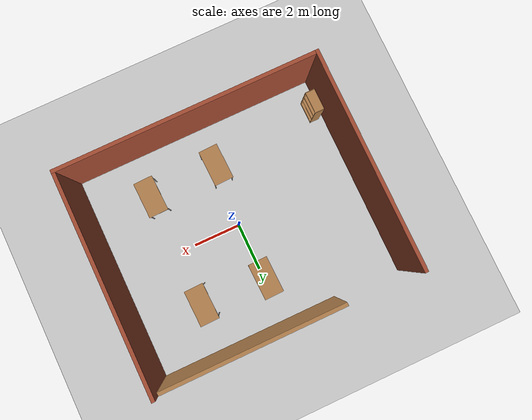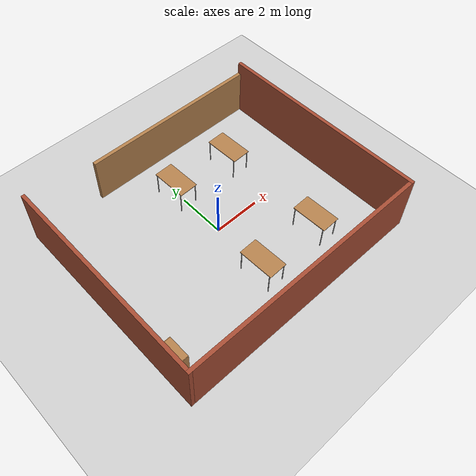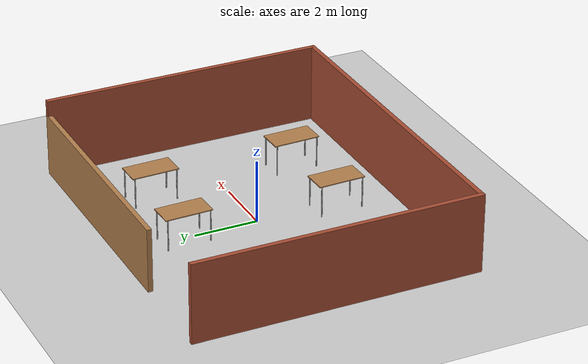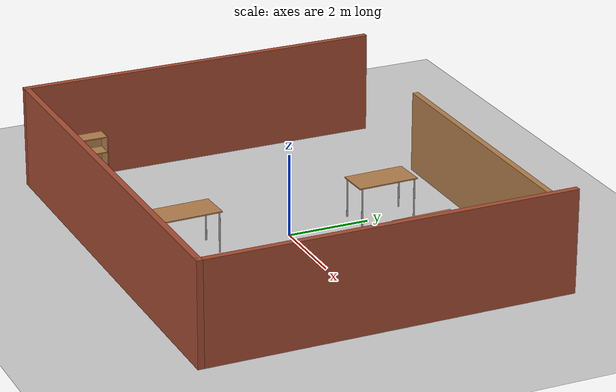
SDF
<sdf version="1.6">
 <world name="default">
  <light name="sun" type="directional">
   <pose>0 0 10 0 -0 0</pose>
   <diffuse>0.8 0.8 0.8 1</diffuse>
   <specular>0.2 0.2 0.2 1</specular>
   <attenuation>
    <range>1000</range>
    <constant>0.9</constant>
    <linear>0.01</linear>
    <quadratic>0.001</quadratic>
   </attenuation>
   <direction>-0.5 0.1 -0.9</direction>
  </light>
  <model name="ground_plane">
   <static>1</static>
   <link name="link">
    <collision name="collision">
     <geometry><plane><normal>0 0 1</normal><size>100 100</size></plane></geometry>
     <surface>
      <contact><collide_bitmask>65535</collide_bitmask></contact>
      <friction><ode><mu>100</mu><mu2>50</mu2></ode></friction>
     </surface>
    </collision>
    <visual name="visual">
     <cast_shadows>0</cast_shadows>
     <geometry><plane><normal>0 0 1</normal><size>100 100</size></plane></geometry>
     <material>
      <script><uri>file://media/materials/scripts/gazebo.material</uri><name>Gazebo/Grey</name></script>
     </material>
    </visual>
   </link>
  </model>
  <gravity>0 0 -9.8</gravity>
  <magnetic_field>6e-06 2.3e-05 -4.2e-05</magnetic_field>
  <atmosphere type="adiabatic"/>
  <physics name="default_physics" default="0" type="ode">
   <max_step_size>0.001</max_step_size>
   <real_time_factor>1</real_time_factor>
   <real_time_update_rate>1000</real_time_update_rate>
  </physics>
  <scene><ambient>0.4 0.4 0.4 1</ambient><background>0.7 0.7 0.7 1</background><shadows>1</shadows></scene>
  <audio><device>default</device></audio>
  <spherical_coordinates>
   <surface_model>EARTH_WGS84</surface_model>
   <latitude_deg>0</latitude_deg>
   <longitude_deg>0</longitude_deg>
   <elevation>0</elevation>
   <heading_deg>0</heading_deg>
  </spherical_coordinates>
  <model name="RRC_club">
   <pose>0.045782 -0.035983 0 0 -0 0</pose>
   <link name="Wall_14">
    <collision name="Wall_14_Collision">
     <geometry><box><size>10.75 0.15 2.5</size></box></geometry>
     <pose>0 0 1.25 0 -0 0</pose>
    </collision>
    <visual name="Wall_14_Visual">
     <pose>0 0 1.25 0 -0 0</pose>
     <geometry><box><size>10.75 0.15 2.5</size></box></geometry>
     <material>
      <script><uri>file://media/materials/scripts/gazebo.material</uri><name>Gazebo/Bricks</name></script>
      <ambient>1 1 1 1</ambient>
     </material>
     <meta><layer>0</layer></meta>
    </visual>
    <pose>-5e-06 -4.42518 0 0 -0 0</pose>
   </link>
   <link name="Wall_16">
    <collision name="Wall_16_Collision">
     <geometry><box><size>9 0.15 2.5</size></box></geometry>
     <pose>0 0 1.25 0 -0 0</pose>
    </collision>
    <visual name="Wall_16_Visual">
     <pose>0 0 1.25 0 -0 0</pose>
     <geometry><box><size>9 0.15 2.5</size></box></geometry>
     <material>
      <script><uri>file://media/materials/scripts/gazebo.material</uri><name>Gazebo/Bricks</name></script>
      <ambient>1 1 1 1</ambient>
     </material>
     <meta><layer>0</layer></meta>
    </visual>
    <pose>5.3 0 0 0 -0 1.57079</pose>
   </link>
   <link name="Wall_18">
    <collision name="Wall_18_Collision">
     <geometry><box><size>9 0.15 2.5</size></box></geometry>
     <pose>0 0 1.25 0 -0 0</pose>
    </collision>
    <visual name="Wall_18_Visual">
     <pose>0 0 1.25 0 -0 0</pose>
     <geometry><box><size>9 0.15 2.5</size></box></geometry>
     <material>
      <script><uri>file://media/materials/scripts/gazebo.material</uri><name>Gazebo/Bricks</name></script>
      <ambient>1 1 1 1</ambient>
     </material>
     <meta><layer>0</layer></meta>
    </visual>
    <pose>-5.3 -0.000181 0 0 -0 -1.5708</pose>
   </link>
   <link name="Wall_20">
    <collision name="Wall_20_Collision">
     <geometry><box><size>7.75 0.15 2</size></box></geometry>
     <pose>0 0 1 0 -0 0</pose>
    </collision>
    <visual name="Wall_20_Visual">
     <pose>0 0 1 0 -0 0</pose>
     <geometry><box><size>7.75 0.15 2</size></box></geometry>
     <material>
      <script><uri>file://media/materials/scripts/gazebo.material</uri><name>Gazebo/Wood</name></script>
      <ambient>1 1 1 1</ambient>
     </material>
     <meta><layer>0</layer></meta>
    </visual>
    <pose>1.50001 4.42518 0 0 -0 3.14159</pose>
   </link>
   <static>1</static>
  </model>
  <model name="table">
   <static>1</static>
   <link name="link">
    <collision name="surface">
     <pose>0 0 1 0 -0 0</pose>
     <geometry><box><size>1.5 0.8 0.03</size></box></geometry>
     <surface><friction><ode><mu>0.6</mu><mu2>0.6</mu2></ode></friction></surface>
    </collision>
    <visual name="visual1">
     <pose>0 0 1 0 -0 0</pose>
     <geometry><box><size>1.5 0.8 0.03</size></box></geometry>
     <material>
      <script><uri>file://media/materials/scripts/gazebo.material</uri><name>Gazebo/Wood</name></script>
     </material>
    </visual>
    <collision name="front_left_leg">
     <pose>0.68 0.38 0.5 0 -0 0</pose>
     <geometry><cylinder><radius>0.02</radius><length>1</length></cylinder></geometry>
    </collision>
    <visual name="front_left_leg">
     <pose>0.68 0.38 0.5 0 -0 0</pose>
     <geometry><cylinder><radius>0.02</radius><length>1</length></cylinder></geometry>
     <material>
      <script><uri>file://media/materials/scripts/gazebo.material</uri><name>Gazebo/Grey</name></script>
     </material>
    </visual>
    <collision name="front_right_leg">
     <pose>0.68 -0.38 0.5 0 -0 0</pose>
     <geometry><cylinder><radius>0.02</radius><length>1</length></cylinder></geometry>
    </collision>
    <visual name="front_right_leg">
     <pose>0.68 -0.38 0.5 0 -0 0</pose>
     <geometry><cylinder><radius>0.02</radius><length>1</length></cylinder></geometry>
     <material>
      <script><uri>file://media/materials/scripts/gazebo.material</uri><name>Gazebo/Grey</name></script>
     </material>
    </visual>
    <collision name="back_right_leg">
     <pose>-0.68 -0.38 0.5 0 -0 0</pose>
     <geometry><cylinder><radius>0.02</radius><length>1</length></cylinder></geometry>
    </collision>
    <visual name="back_right_leg">
     <pose>-0.68 -0.38 0.5 0 -0 0</pose>
     <geometry><cylinder><radius>0.02</radius><length>1</length></cylinder></geometry>
     <material>
      <script><uri>file://media/materials/scripts/gazebo.material</uri><name>Gazebo/Grey</name></script>
     </material>
    </visual>
    <collision name="back_left_leg">
     <pose>-0.68 0.38 0.5 0 -0 0</pose>
     <geometry><cylinder><radius>0.02</radius><length>1</length></cylinder></geometry>
    </collision>
    <visual name="back_left_leg">
     <pose>-0.68 0.38 0.5 0 -0 0</pose>
     <geometry><cylinder><radius>0.02</radius><length>1</length></cylinder></geometry>
     <material>
      <script><uri>file://media/materials/scripts/gazebo.material</uri><name>Gazebo/Grey</name></script>
     </material>
    </visual>
   </link>
   <pose>-0.155231 -2.51877 0 0 -0 1.59842</pose>
  </model>
  <model name="table_clone">
   <static>1</static>
   <link name="link">
    <collision name="surface">
     <pose>0 0 1 0 -0 0</pose>
     <geometry><box><size>1.5 0.8 0.03</size></box></geometry>
     <surface><friction><ode><mu>0.6</mu><mu2>0.6</mu2></ode></friction></surface>
    </collision>
    <visual name="visual1">
     <pose>0 0 1 0 -0 0</pose>
     <geometry><box><size>1.5 0.8 0.03</size></box></geometry>
     <material>
      <script><uri>file://media/materials/scripts/gazebo.material</uri><name>Gazebo/Wood</name></script>
     </material>
    </visual>
    <collision name="front_left_leg">
     <pose>0.68 0.38 0.5 0 -0 0</pose>
     <geometry><cylinder><radius>0.02</radius><length>1</length></cylinder></geometry>
    </collision>
    <visual name="front_left_leg">
     <pose>0.68 0.38 0.5 0 -0 0</pose>
     <geometry><cylinder><radius>0.02</radius><length>1</length></cylinder></geometry>
     <material>
      <script><uri>file://media/materials/scripts/gazebo.material</uri><name>Gazebo/Grey</name></script>
     </material>
    </visual>
    <collision name="front_right_leg">
     <pose>0.68 -0.38 0.5 0 -0 0</pose>
     <geometry><cylinder><radius>0.02</radius><length>1</length></cylinder></geometry>
    </collision>
    <visual name="front_right_leg">
     <pose>0.68 -0.38 0.5 0 -0 0</pose>
     <geometry><cylinder><radius>0.02</radius><length>1</length></cylinder></geometry>
     <material>
      <script><uri>file://media/materials/scripts/gazebo.material</uri><name>Gazebo/Grey</name></script>
     </material>
    </visual>
    <collision name="back_right_leg">
     <pose>-0.68 -0.38 0.5 0 -0 0</pose>
     <geometry><cylinder><radius>0.02</radius><length>1</length></cylinder></geometry>
    </collision>
    <visual name="back_right_leg">
     <pose>-0.68 -0.38 0.5 0 -0 0</pose>
     <geometry><cylinder><radius>0.02</radius><length>1</length></cylinder></geometry>
     <material>
      <script><uri>file://media/materials/scripts/gazebo.material</uri><name>Gazebo/Grey</name></script>
     </material>
    </visual>
    <collision name="back_left_leg">
     <pose>-0.68 0.38 0.5 0 -0 0</pose>
     <geometry><cylinder><radius>0.02</radius><length>1</length></cylinder></geometry>
    </collision>
    <visual name="back_left_leg">
     <pose>-0.68 0.38 0.5 0 -0 0</pose>
     <geometry><cylinder><radius>0.02</radius><length>1</length></cylinder></geometry>
     <material>
      <script><uri>file://media/materials/scripts/gazebo.material</uri><name>Gazebo/Grey</name></script>
     </material>
    </visual>
   </link>
   <pose>-0.054084 2.36724 0 0 -0 1.59842</pose>
  </model>
  <model name="table_clone_0">
   <static>1</static>
   <link name="link">
    <collision name="surface">
     <pose>0 0 1 0 -0 0</pose>
     <geometry><box><size>1.5 0.8 0.03</size></box></geometry>
     <surface><friction><ode><mu>0.6</mu><mu2>0.6</mu2></ode></friction></surface>
    </collision>
    <visual name="visual1">
     <pose>0 0 1 0 -0 0</pose>
     <geometry><box><size>1.5 0.8 0.03</size></box></geometry>
     <material>
      <script><uri>file://media/materials/scripts/gazebo.material</uri><name>Gazebo/Wood</name></script>
     </material>
    </visual>
    <collision name="front_left_leg">
     <pose>0.68 0.38 0.5 0 -0 0</pose>
     <geometry><cylinder><radius>0.02</radius><length>1</length></cylinder></geometry>
    </collision>
    <visual name="front_left_leg">
     <pose>0.68 0.38 0.5 0 -0 0</pose>
     <geometry><cylinder><radius>0.02</radius><length>1</length></cylinder></geometry>
     <material>
      <script><uri>file://media/materials/scripts/gazebo.material</uri><name>Gazebo/Grey</name></script>
     </material>
    </visual>
    <collision name="front_right_leg">
     <pose>0.68 -0.38 0.5 0 -0 0</pose>
     <geometry><cylinder><radius>0.02</radius><length>1</length></cylinder></geometry>
    </collision>
    <visual name="front_right_leg">
     <pose>0.68 -0.38 0.5 0 -0 0</pose>
     <geometry><cylinder><radius>0.02</radius><length>1</length></cylinder></geometry>
     <material>
      <script><uri>file://media/materials/scripts/gazebo.material</uri><name>Gazebo/Grey</name></script>
     </material>
    </visual>
    <collision name="back_right_leg">
     <pose>-0.68 -0.38 0.5 0 -0 0</pose>
     <geometry><cylinder><radius>0.02</radius><length>1</length></cylinder></geometry>
    </collision>
    <visual name="back_right_leg">
     <pose>-0.68 -0.38 0.5 0 -0 0</pose>
     <geometry><cylinder><radius>0.02</radius><length>1</length></cylinder></geometry>
     <material>
      <script><uri>file://media/materials/scripts/gazebo.material</uri><name>Gazebo/Grey</name></script>
     </material>
    </visual>
    <collision name="back_left_leg">
     <pose>-0.68 0.38 0.5 0 -0 0</pose>
     <geometry><cylinder><radius>0.02</radius><length>1</length></cylinder></geometry>
    </collision>
    <visual name="back_left_leg">
     <pose>-0.68 0.38 0.5 0 -0 0</pose>
     <geometry><cylinder><radius>0.02</radius><length>1</length></cylinder></geometry>
     <material>
      <script><uri>file://media/materials/scripts/gazebo.material</uri><name>Gazebo/Grey</name></script>
     </material>
    </visual>
   </link>
   <pose>2.71781 -2.44054 0 0 -0 1.59842</pose>
  </model>
  <model name="table_clone_1">
   <static>1</static>
   <link name="link">
    <collision name="surface">
     <pose>0 0 1 0 -0 0</pose>
     <geometry><box><size>1.5 0.8 0.03</size></box></geometry>
     <surface><friction><ode><mu>0.6</mu><mu2>0.6</mu2></ode></friction></surface>
    </collision>
    <visual name="visual1">
     <pose>0 0 1 0 -0 0</pose>
     <geometry><box><size>1.5 0.8 0.03</size></box></geometry>
     <material>
      <script><uri>file://media/materials/scripts/gazebo.material</uri><name>Gazebo/Wood</name></script>
     </material>
    </visual>
    <collision name="front_left_leg">
     <pose>0.68 0.38 0.5 0 -0 0</pose>
     <geometry><cylinder><radius>0.02</radius><length>1</length></cylinder></geometry>
    </collision>
    <visual name="front_left_leg">
     <pose>0.68 0.38 0.5 0 -0 0</pose>
     <geometry><cylinder><radius>0.02</radius><length>1</length></cylinder></geometry>
     <material>
      <script><uri>file://media/materials/scripts/gazebo.material</uri><name>Gazebo/Grey</name></script>
     </material>
    </visual>
    <collision name="front_right_leg">
     <pose>0.68 -0.38 0.5 0 -0 0</pose>
     <geometry><cylinder><radius>0.02</radius><length>1</length></cylinder></geometry>
    </collision>
    <visual name="front_right_leg">
     <pose>0.68 -0.38 0.5 0 -0 0</pose>
     <geometry><cylinder><radius>0.02</radius><length>1</length></cylinder></geometry>
     <material>
      <script><uri>file://media/materials/scripts/gazebo.material</uri><name>Gazebo/Grey</name></script>
     </material>
    </visual>
    <collision name="back_right_leg">
     <pose>-0.68 -0.38 0.5 0 -0 0</pose>
     <geometry><cylinder><radius>0.02</radius><length>1</length></cylinder></geometry>
    </collision>
    <visual name="back_right_leg">
     <pose>-0.68 -0.38 0.5 0 -0 0</pose>
     <geometry><cylinder><radius>0.02</radius><length>1</length></cylinder></geometry>
     <material>
      <script><uri>file://media/materials/scripts/gazebo.material</uri><name>Gazebo/Grey</name></script>
     </material>
    </visual>
    <collision name="back_left_leg">
     <pose>-0.68 0.38 0.5 0 -0 0</pose>
     <geometry><cylinder><radius>0.02</radius><length>1</length></cylinder></geometry>
    </collision>
    <visual name="back_left_leg">
     <pose>-0.68 0.38 0.5 0 -0 0</pose>
     <geometry><cylinder><radius>0.02</radius><length>1</length></cylinder></geometry>
     <material>
      <script><uri>file://media/materials/scripts/gazebo.material</uri><name>Gazebo/Grey</name></script>
     </material>
    </visual>
   </link>
   <pose>2.64587 2.25466 0 0 -0 1.59842</pose>
  </model>
  <model name="bookshelf">
   <static>1</static>
   <link name="link">
    <inertial><mass>1</mass></inertial>
    <collision name="back">
     <pose>0 0.005 0.6 0 -0 0</pose>
     <geometry><box><size>0.9 0.01 1.2</size></box></geometry>
    </collision>
    <visual name="visual1">
     <pose>0 0.005 0.6 0 -0 0</pose>
     <geometry><box><size>0.9 0.01 1.2</size></box></geometry>
     <material>
      <script><uri>file://media/materials/scripts/gazebo.material</uri><name>Gazebo/Wood</name></script>
     </material>
    </visual>
    <collision name="left_side">
     <pose>0.45 -0.195 0.6 0 -0 0</pose>
     <geometry><box><size>0.02 0.4 1.2</size></box></geometry>
    </collision>
    <visual name="visual2">
     <pose>0.45 -0.195 0.6 0 -0 0</pose>
     <geometry><box><size>0.02 0.4 1.2</size></box></geometry>
     <material>
      <script><uri>file://media/materials/scripts/gazebo.material</uri><name>Gazebo/Wood</name></script>
     </material>
    </visual>
    <collision name="right_side">
     <pose>-0.45 -0.195 0.6 0 -0 0</pose>
     <geometry><box><size>0.02 0.4 1.2</size></box></geometry>
    </collision>
    <visual name="visual3">
     <pose>-0.45 -0.195 0.6 0 -0 0</pose>
     <geometry><box><size>0.02 0.4 1.2</size></box></geometry>
     <material>
      <script><uri>file://media/materials/scripts/gazebo.material</uri><name>Gazebo/Wood</name></script>
     </material>
    </visual>
    <collision name="bottom">
     <pose>0 -0.195 0.03 0 -0 0</pose>
     <geometry><box><size>0.88 0.4 0.06</size></box></geometry>
    </collision>
    <visual name="visual4">
     <pose>0 -0.195 0.03 0 -0 0</pose>
     <geometry><box><size>0.88 0.4 0.06</size></box></geometry>
     <material>
      <script><uri>file://media/materials/scripts/gazebo.material</uri><name>Gazebo/Wood</name></script>
     </material>
    </visual>
    <collision name="top">
     <pose>0 -0.195 1.19 0 -0 0</pose>
     <geometry><box><size>0.88 0.4 0.02</size></box></geometry>
    </collision>
    <visual name="visual5">
     <pose>0 -0.195 1.19 0 -0 0</pose>
     <geometry><box><size>0.88 0.4 0.02</size></box></geometry>
     <material>
      <script><uri>file://media/materials/scripts/gazebo.material</uri><name>Gazebo/Wood</name></script>
     </material>
    </visual>
    <collision name="low_shelf">
     <pose>0 -0.195 0.43 0 -0 0</pose>
     <geometry><box><size>0.88 0.4 0.02</size></box></geometry>
    </collision>
    <visual name="visual6">
     <pose>0 -0.195 0.43 0 -0 0</pose>
     <geometry><box><size>0.88 0.4 0.02</size></box></geometry>
     <material>
      <script><uri>file://media/materials/scripts/gazebo.material</uri><name>Gazebo/Wood</name></script>
     </material>
    </visual>
    <collision name="high_shelf">
     <pose>0 -0.195 0.8 0 -0 0</pose>
     <geometry><box><size>0.88 0.4 0.02</size></box></geometry>
    </collision>
    <visual name="visual7">
     <pose>0 -0.195 0.8 0 -0 0</pose>
     <geometry><box><size>0.88 0.4 0.02</size></box></geometry>
     <material>
      <script><uri>file://media/materials/scripts/gazebo.material</uri><name>Gazebo/Wood</name></script>
     </material>
    </visual>
   </link>
   <pose>-4.98206 -3.15668 0 0 -0 1.57459</pose>
  </model>
 </world>
</sdf>
